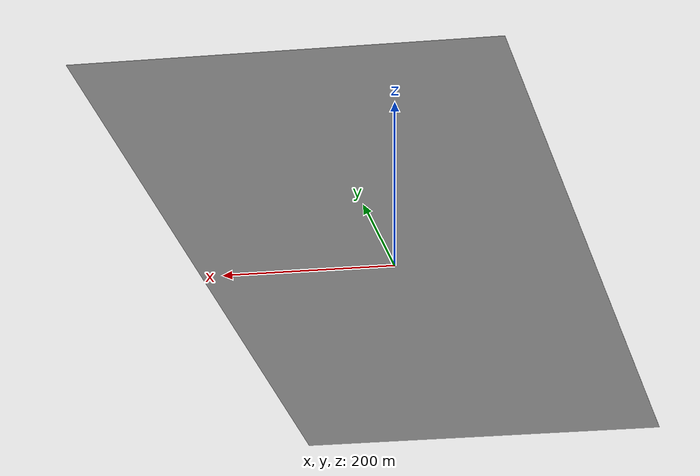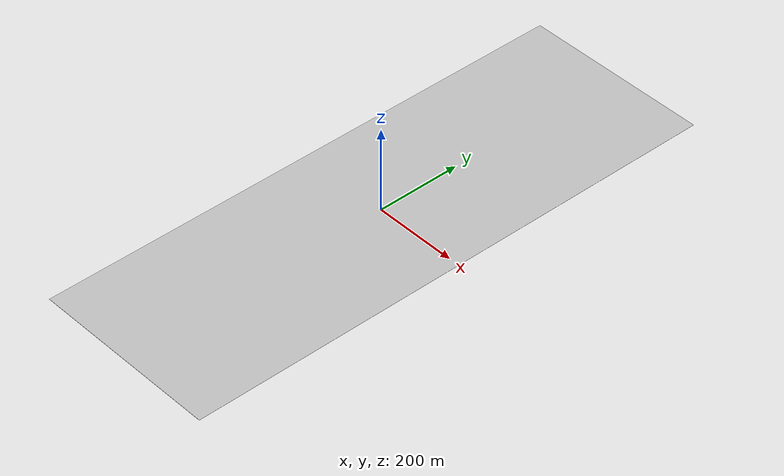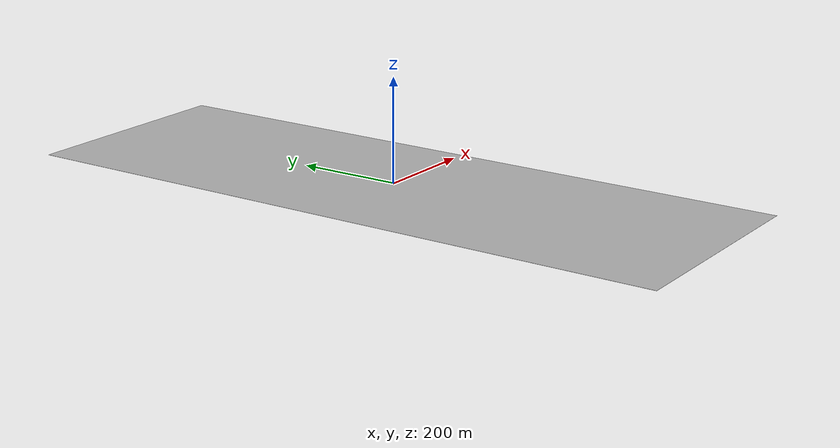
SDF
<?xml version="1.0" ?>
<sdf version="1.6">
  <model name="sonoma_raceway_box">
    <static>true</static>
    <link name="link">
      <collision name="collision">
        <geometry>
          <box>
            <size>450 1300 0.5</size>
          </box>
        </geometry>
      </collision>
      <visual name="visual">
        <geometry>
          <box>
            <size>450 1300 0.5</size>
          </box>
        </geometry>
        <material>
          <script>
            <uri>model://sonoma_raceway_box/materials/scripts</uri>
            <uri>model://sonoma_raceway_box/materials/textures</uri>
            <name>SonomaRaceway</name>
          </script>
        </material>
      </visual>

    </link>
  </model>
</sdf>
